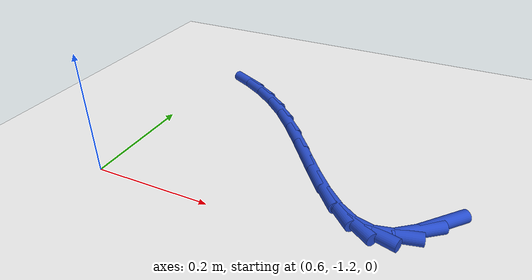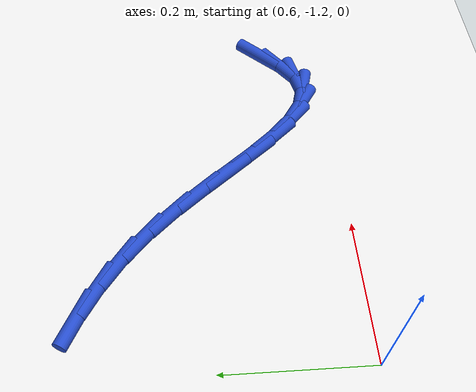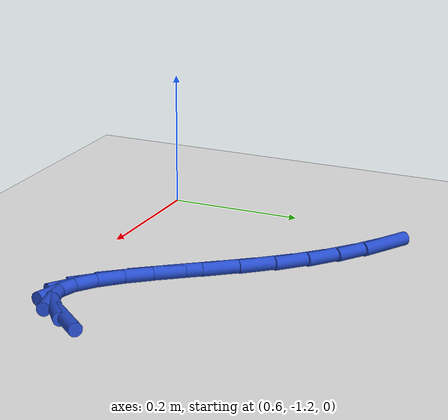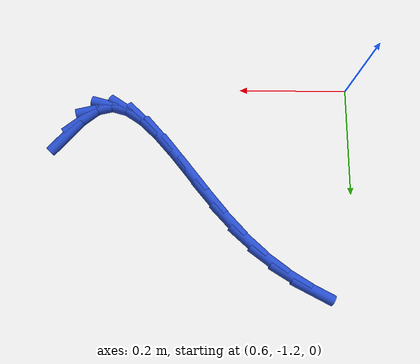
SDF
<sdf version="1.6">
 <world name="default">
  <model name="ground_plane">
   <static>1</static>
   <link name="link">
    <collision name="collision">
     <geometry><plane><normal>0 0 1</normal><size>100 100</size></plane></geometry>
     <surface><friction><ode><mu>100</mu><mu2>50</mu2></ode></friction></surface>
    </collision>
    <visual name="visual">
     <cast_shadows>0</cast_shadows>
     <geometry><plane><normal>0 0 1</normal><size>100 100</size></plane></geometry>
     <material>
      <script><uri>file://media/materials/scripts/gazebo.material</uri><name>Gazebo/WhiteGlow</name></script>
     </material>
    </visual>
   </link>
  </model>
  <model name="line">
   <link name="link_137">
    <pose>1.1236876411729038 -1.1039240523136016 0.01 0 1.57 0.8304219879426904</pose>
    <collision name="collision">
     <geometry><cylinder><radius>0.01</radius><length>0.08</length></cylinder></geometry>
    </collision>
    <visual name="visual">
     <material>
      <script><name>Gazebo/Blue</name><uri>file://media/materials/scripts/gazebo.material</uri></script>
     </material>
     <geometry><cylinder><radius>0.01</radius><length>0.08</length></cylinder></geometry>
    </visual>
   </link>
   <link name="link_138">
    <pose>1.09537247971867 -1.1349110284342452 0.01 0 1.57 0.6579589737501236</pose>
    <collision name="collision">
     <geometry><cylinder><radius>0.01</radius><length>0.08</length></cylinder></geometry>
    </collision>
    <visual name="visual">
     <material>
      <script><name>Gazebo/Blue</name><uri>file://media/materials/scripts/gazebo.material</uri></script>
     </material>
     <geometry><cylinder><radius>0.01</radius><length>0.08</length></cylinder></geometry>
    </visual>
   </link>
   <link name="link_139">
    <pose>1.0675661085070842 -1.1564008950463307 0.01 0 1.57 0.22892637876747993</pose>
    <collision name="collision">
     <geometry><cylinder><radius>0.01</radius><length>0.08</length></cylinder></geometry>
    </collision>
    <visual name="visual">
     <material>
      <script><name>Gazebo/Blue</name><uri>file://media/materials/scripts/gazebo.material</uri></script>
     </material>
     <geometry><cylinder><radius>0.01</radius><length>0.08</length></cylinder></geometry>
    </visual>
   </link>
   <link name="link_140">
    <pose>1.039548731916602 -1.1629292566349916 0.01 0 1.57 -0.2590982294126984</pose>
    <collision name="collision">
     <geometry><cylinder><radius>0.01</radius><length>0.08</length></cylinder></geometry>
    </collision>
    <visual name="visual">
     <material>
      <script><name>Gazebo/Blue</name><uri>file://media/materials/scripts/gazebo.material</uri></script>
     </material>
     <geometry><cylinder><radius>0.01</radius><length>0.08</length></cylinder></geometry>
    </visual>
   </link>
   <link name="link_141">
    <pose>1.0110843593236694 -1.1553845985860391 0.01 0 1.57 -0.5837971031144981</pose>
    <collision name="collision">
     <geometry><cylinder><radius>0.01</radius><length>0.08</length></cylinder></geometry>
    </collision>
    <visual name="visual">
     <material>
      <script><name>Gazebo/Blue</name><uri>file://media/materials/scripts/gazebo.material</uri></script>
     </material>
     <geometry><cylinder><radius>0.01</radius><length>0.08</length></cylinder></geometry>
    </visual>
   </link>
   <link name="link_142">
    <pose>0.982055214139449 -1.1362076839311623 0.01 0 1.57 -0.7622741219645618</pose>
    <collision name="collision">
     <geometry><cylinder><radius>0.01</radius><length>0.08</length></cylinder></geometry>
    </collision>
    <visual name="visual">
     <material>
      <script><name>Gazebo/Blue</name><uri>file://media/materials/scripts/gazebo.material</uri></script>
     </material>
     <geometry><cylinder><radius>0.01</radius><length>0.08</length></cylinder></geometry>
    </visual>
   </link>
   <link name="link_143">
    <pose>0.9523435197751053 -1.107839275702051 0.01 0 1.57 -0.8554803257210843</pose>
    <collision name="collision">
     <geometry><cylinder><radius>0.01</radius><length>0.08</length></cylinder></geometry>
    </collision>
    <visual name="visual">
     <material>
      <script><name>Gazebo/Blue</name><uri>file://media/materials/scripts/gazebo.material</uri></script>
     </material>
     <geometry><cylinder><radius>0.01</radius><length>0.08</length></cylinder></geometry>
    </visual>
   </link>
   <link name="link_144">
    <pose>0.9218314996418017 -1.0727201369303943 0.01 0 1.57 -0.8978078517182537</pose>
    <collision name="collision">
     <geometry><cylinder><radius>0.01</radius><length>0.08</length></cylinder></geometry>
    </collision>
    <visual name="visual">
     <material>
      <script><name>Gazebo/Blue</name><uri>file://media/materials/scripts/gazebo.material</uri></script>
     </material>
     <geometry><cylinder><radius>0.01</radius><length>0.08</length></cylinder></geometry>
    </visual>
   </link>
   <link name="link_145">
    <pose>0.8904013771507003 -1.0332910306478809 0.01 0 1.57 -0.9045677061905772</pose>
    <collision name="collision">
     <geometry><cylinder><radius>0.01</radius><length>0.08</length></cylinder></geometry>
    </collision>
    <visual name="visual">
     <material>
      <script><name>Gazebo/Blue</name><uri>file://media/materials/scripts/gazebo.material</uri></script>
     </material>
     <geometry><cylinder><radius>0.01</radius><length>0.08</length></cylinder></geometry>
    </visual>
   </link>
   <link name="link_146">
    <pose>0.8579353757129654 -0.9919927198862004 0.01 0 1.57 -0.8807028913377342</pose>
    <collision name="collision">
     <geometry><cylinder><radius>0.01</radius><length>0.08</length></cylinder></geometry>
    </collision>
    <visual name="visual">
     <material>
      <script><name>Gazebo/Blue</name><uri>file://media/materials/scripts/gazebo.material</uri></script>
     </material>
     <geometry><cylinder><radius>0.01</radius><length>0.08</length></cylinder></geometry>
    </visual>
   </link>
   <link name="link_147">
    <pose>0.8243157187397597 -0.9512659676770422 0.01 0 1.57 -0.824264626259211</pose>
    <collision name="collision">
     <geometry><cylinder><radius>0.01</radius><length>0.08</length></cylinder></geometry>
    </collision>
    <visual name="visual">
     <material>
      <script><name>Gazebo/Blue</name><uri>file://media/materials/scripts/gazebo.material</uri></script>
     </material>
     <geometry><cylinder><radius>0.01</radius><length>0.08</length></cylinder></geometry>
    </visual>
   </link>
   <link name="link_148">
    <pose>0.7894246296422462 -0.9135515370520946 0.01 0 1.57 -0.7351642566896213</pose>
    <collision name="collision">
     <geometry><cylinder><radius>0.01</radius><length>0.08</length></cylinder></geometry>
    </collision>
    <visual name="visual">
     <material>
      <script><name>Gazebo/Blue</name><uri>file://media/materials/scripts/gazebo.material</uri></script>
     </material>
     <geometry><cylinder><radius>0.01</radius><length>0.08</length></cylinder></geometry>
    </visual>
   </link>
   <link name="link_149">
    <pose>0.7532022180607748 -0.880797023405386 0.01 0 1.57 -0.641200205390785</pose>
    <collision name="collision">
     <geometry><cylinder><radius>0.01</radius><length>0.08</length></cylinder></geometry>
    </collision>
    <visual name="visual">
     <material>
      <script><name>Gazebo/Blue</name><uri>file://media/materials/scripts/gazebo.material</uri></script>
     </material>
     <geometry><cylinder><radius>0.01</radius><length>0.08</length></cylinder></geometry>
    </visual>
   </link>
   <link name="link_150">
    <pose>0.7158290662838902 -0.8529012908609572 0.01 0 1.57 -0.5537847438451414</pose>
    <collision name="collision">
     <geometry><cylinder><radius>0.01</radius><length>0.08</length></cylinder></geometry>
    </collision>
    <visual name="visual">
     <material>
      <script><name>Gazebo/Blue</name><uri>file://media/materials/scripts/gazebo.material</uri></script>
     </material>
     <geometry><cylinder><radius>0.01</radius><length>0.08</length></cylinder></geometry>
    </visual>
   </link>
   <link name="link_151">
    <pose>0.6775481920833154 -0.8292312780714827 0.01 0 1.57 -0.47598903036206236</pose>
    <collision name="collision">
     <geometry><cylinder><radius>0.01</radius><length>0.08</length></cylinder></geometry>
    </collision>
    <visual name="visual">
     <material>
      <script><name>Gazebo/Blue</name><uri>file://media/materials/scripts/gazebo.material</uri></script>
     </material>
     <geometry><cylinder><radius>0.01</radius><length>0.08</length></cylinder></geometry>
    </visual>
   </link>
  </model>
 </world>
</sdf>
